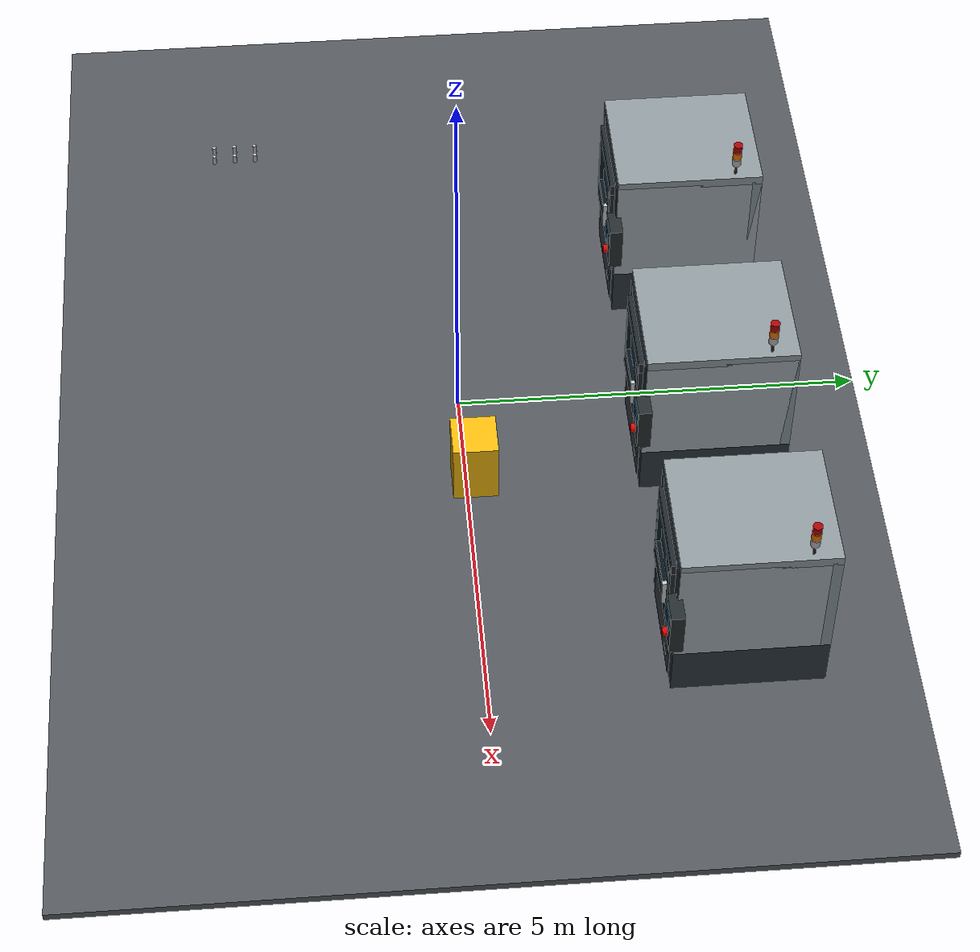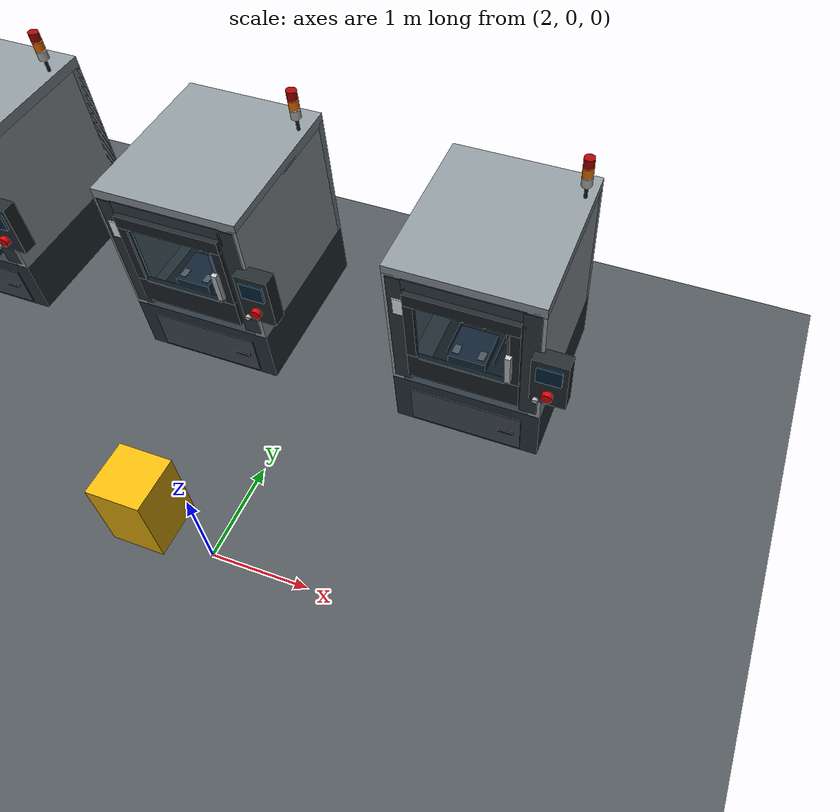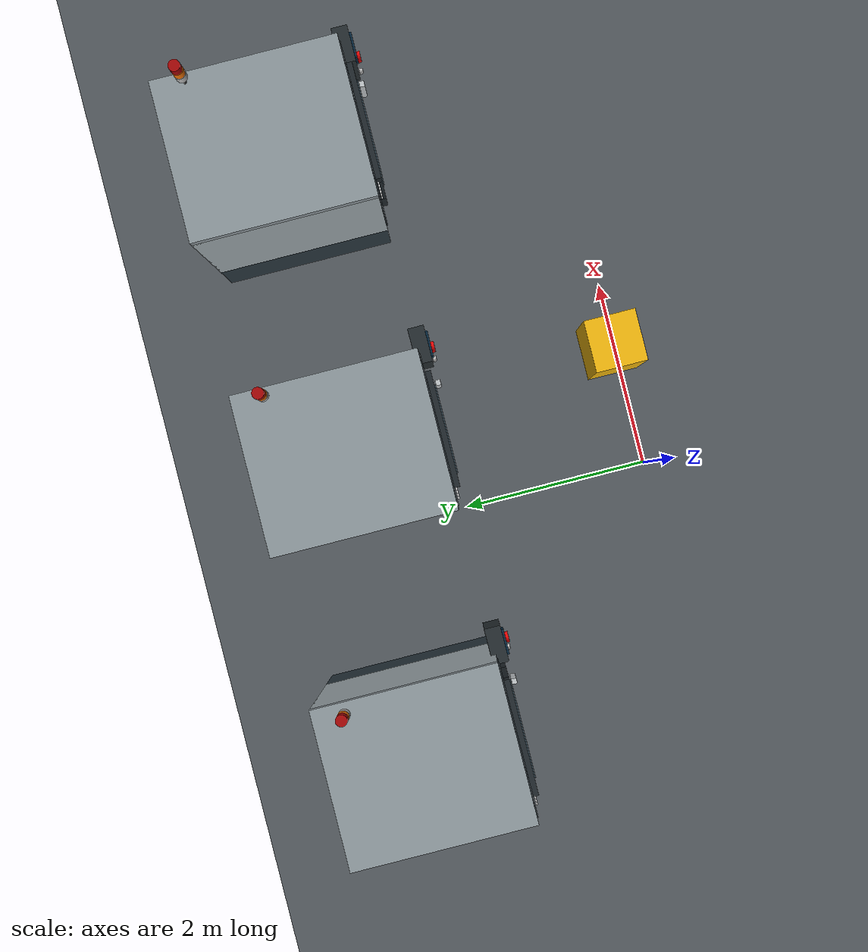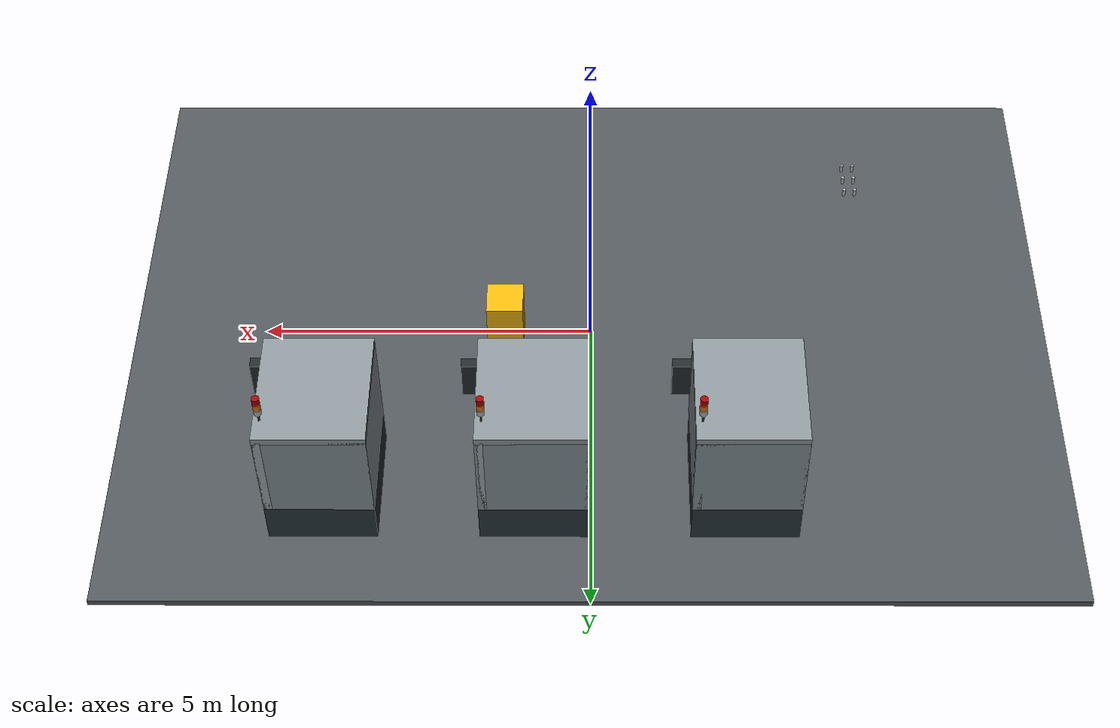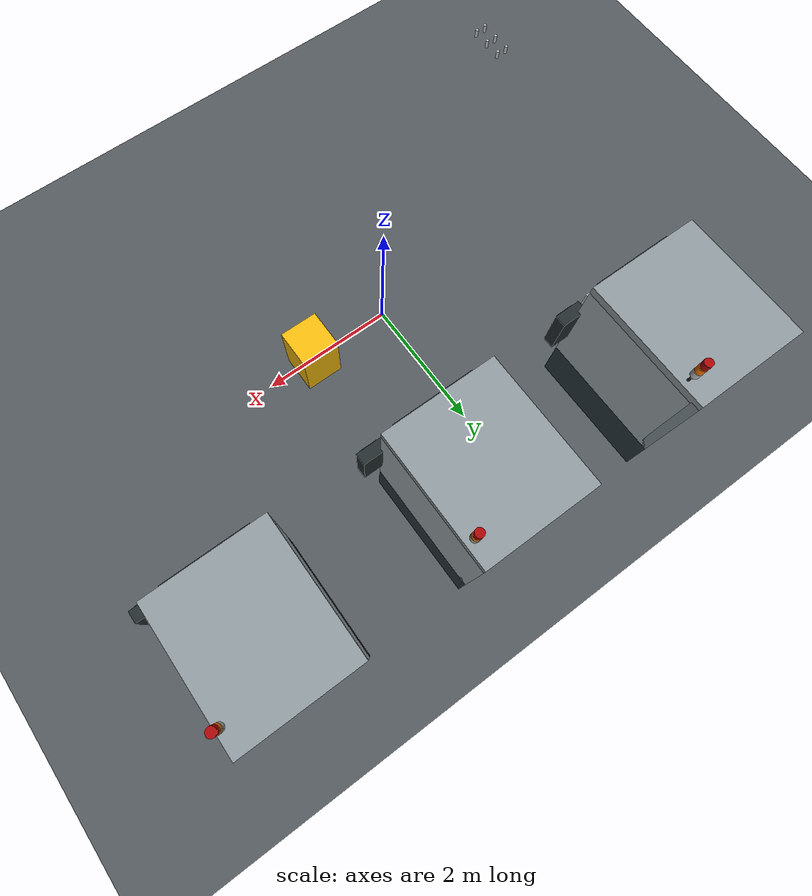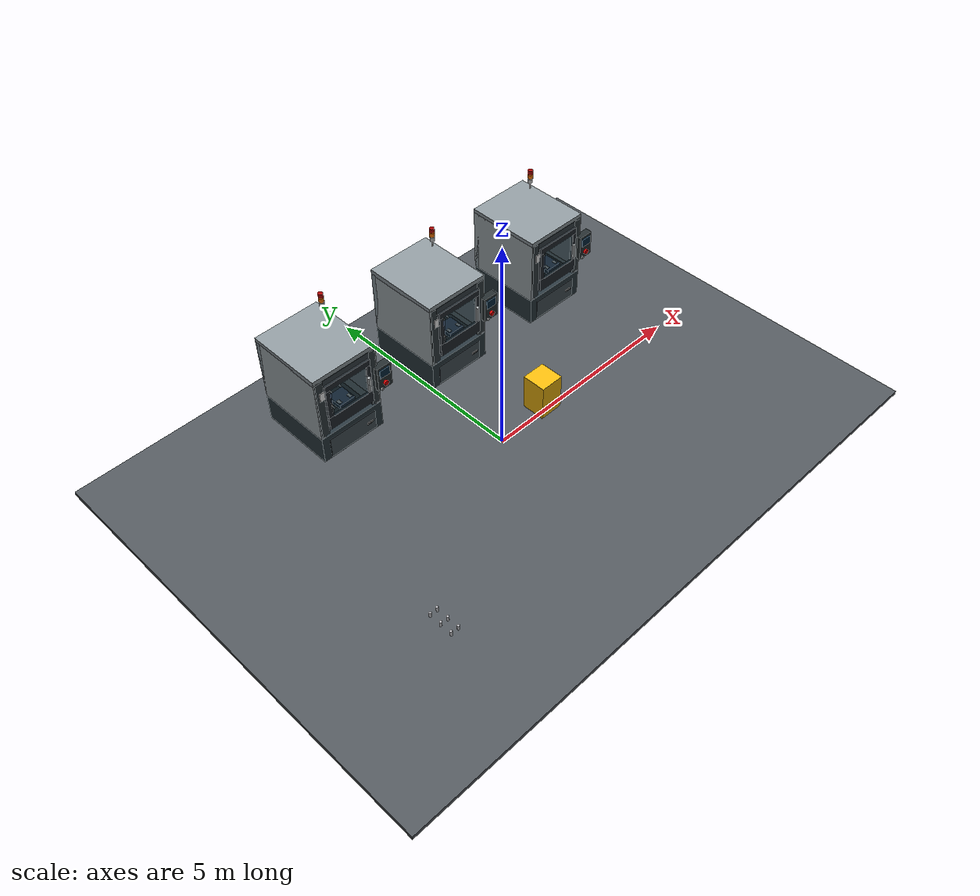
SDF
<sdf version="1.9">
 <world name="multi_machine_factory">
  <physics name="physics" type="ignored">
   <max_step_size>0.002</max_step_size>
   <real_time_factor>1.5</real_time_factor>
  </physics>
  <plugin filename="gz-sim-physics-system" name="gz::sim::systems::Physics"/>
  <plugin filename="gz-sim-contact-system" name="gz::sim::systems::Contact"/>
  <plugin filename="gz-sim-imu-system" name="gz::sim::systems::Imu"/>
  <plugin filename="gz-sim-user-commands-system" name="gz::sim::systems::UserCommands"/>
  <plugin filename="gz-sim-scene-broadcaster-system" name="gz::sim::systems::SceneBroadcaster"/>
  <plugin filename="gz-sim-sensors-system" name="gz::sim::systems::Sensors">
   <render_engine>ogre2</render_engine>
  </plugin>
  <scene>
   <ambient>0.55 0.55 0.55 1</ambient>
   <background>0.12 0.14 0.18 1</background>
   <shadows>true</shadows>
  </scene>
  <light name="sun" type="directional">
   <pose>0 0 10 0 0 0</pose>
   <diffuse>0.9 0.9 0.9 1</diffuse>
   <specular>0.2 0.2 0.2 1</specular>
   <direction>-0.4 0.2 -1</direction>
  </light>
  <model name="floor">
   <static>true</static>
   <link name="link">
    <collision name="collision"><geometry><box><size>14 10 0.1</size></box></geometry></collision>
    <visual name="visual">
     <geometry><box><size>14 10 0.1</size></box></geometry>
     <material><ambient>0.28 0.30 0.32 1</ambient><diffuse>0.32 0.34 0.36 1</diffuse></material>
    </visual>
   </link>
  </model>
  <include><uri>model://cnc_machine</uri><name>machine_1</name><pose>3.8 3.0 0 0 0 1.5708</pose></include>
  <include><uri>model://cnc_machine</uri><name>machine_2</name><pose>0.8 3.0 0 0 0 1.5708</pose></include>
  <include><uri>model://cnc_machine</uri><name>machine_3</name><pose>-2.2 3.0 0 0 0 1.5708</pose></include>
  <model name="demo_overview_camera">
   <static>true</static>
   <pose>0 -8.0 7.0 0 0.67 1.5708</pose>
   <link name="camera_link">
    <sensor name="overview" type="camera">
     <always_on>false</always_on>
     <update_rate>20</update_rate>
     <topic>/demo/overview/image</topic>
     <camera>
      <horizontal_fov>1.30</horizontal_fov>
      <image><width>1280</width><height>720</height><format>R8G8B8</format></image>
      <clip><near>0.10</near><far>30.0</far></clip>
     </camera>
    </sensor>
   </link>
  </model>
  <model name="temporary_obstacle">
   <static>true</static>
   <pose>1.3 0.1 0 0 0 0</pose>
   <link name="link">
    <collision name="collision">
     <pose>0 0 0.45 0 0 0</pose>
     <geometry><box><size>0.55 0.55 0.9</size></box></geometry>
    </collision>
    <visual name="visual">
     <pose>0 0 0.45 0 0 0</pose>
     <geometry><box><size>0.55 0.55 0.9</size></box></geometry>
     <material><diffuse>0.95 0.72 0.05 1</diffuse></material>
    </visual>
   </link>
  </model>
  <include><uri>model://workpiece</uri><name>raw_part_1</name><pose>-4.05 -2.97 0.614 0 0 0</pose></include>
  <include><uri>model://workpiece</uri><name>raw_part_2</name><pose>-4.05 -2.70 0.614 0 0 0</pose></include>
  <include><uri>model://workpiece</uri><name>raw_part_3</name><pose>-4.05 -2.43 0.614 0 0 0</pose></include>
  <include><uri>model://workpiece</uri><name>raw_part_4</name><pose>-4.22 -2.97 0.614 0 0 0</pose></include>
  <include><uri>model://workpiece</uri><name>raw_part_5</name><pose>-4.22 -2.70 0.614 0 0 0</pose></include>
  <include><uri>model://workpiece</uri><name>raw_part_6</name><pose>-4.22 -2.43 0.614 0 0 0</pose></include>
  <include><uri>model://fixture_clamp_constraints</uri></include>
 </world>
</sdf>

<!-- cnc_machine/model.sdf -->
<sdf version="1.9">
  <model name="cnc_machine">
    <static>false</static>
    <self_collide>false</self_collide>

    <!-- The enclosure is dynamic only so its door can move. This joint keeps
         the cabinet rigidly attached to the factory floor. -->
    <joint name="cabinet_world_joint" type="fixed">
      <parent>world</parent>
      <child>cabinet</child>
    </joint>

    <link name="cabinet">
      <inertial>
        <pose>0 0 1.05 0 0 0</pose>
        <mass>850</mass>
        <inertia>
          <ixx>240</ixx><iyy>280</iyy><izz>310</izz>
        </inertia>
      </inertial>

      <!-- Base cabinet and machine feet. -->
      <collision name="base_collision">
        <pose>0 0 0.35 0 0 0</pose>
        <geometry><box><size>1.80 1.55 0.70</size></box></geometry>
      </collision>
      <visual name="base_visual">
        <pose>0 0 0.35 0 0 0</pose>
        <geometry><box><size>1.80 1.55 0.70</size></box></geometry>
        <material><ambient>0.12 0.16 0.19 1</ambient><diffuse>0.16 0.21 0.24 1</diffuse><specular>0.35 0.35 0.35 1</specular></material>
      </visual>
      <visual name="lower_access_panel">
        <pose>-0.906 0 0.33 0 0 0</pose>
        <geometry><box><size>0.015 1.18 0.48</size></box></geometry>
        <material><diffuse>0.26 0.31 0.34 1</diffuse></material>
      </visual>
      <visual name="panel_handle">
        <pose>-0.92 -0.44 0.34 0 0 0</pose>
        <geometry><box><size>0.035 0.16 0.035</size></box></geometry>
        <material><diffuse>0.04 0.04 0.04 1</diffuse></material>
      </visual>

      <!-- Rear and side enclosure leave a genuine front opening. -->
      <collision name="rear_collision">
        <pose>0.84 0 1.45 0 0 0</pose>
        <geometry><box><size>0.12 1.55 1.50</size></box></geometry>
      </collision>
      <visual name="rear_visual">
        <pose>0.84 0 1.45 0 0 0</pose>
        <geometry><box><size>0.12 1.55 1.50</size></box></geometry>
        <material><diffuse>0.52 0.57 0.60 1</diffuse></material>
      </visual>
      <collision name="left_wall_collision">
        <pose>0 0.715 1.45 0 0 0</pose>
        <geometry><box><size>1.80 0.12 1.50</size></box></geometry>
      </collision>
      <visual name="left_wall_visual">
        <pose>0 0.715 1.45 0 0 0</pose>
        <geometry><box><size>1.80 0.12 1.50</size></box></geometry>
        <material><diffuse>0.62 0.66 0.68 1</diffuse></material>
      </visual>
      <collision name="right_wall_collision">
        <pose>0 -0.715 1.45 0 0 0</pose>
        <geometry><box><size>1.80 0.12 1.50</size></box></geometry>
      </collision>
      <visual name="right_wall_visual">
        <pose>0 -0.715 1.45 0 0 0</pose>
        <geometry><box><size>1.80 0.12 1.50</size></box></geometry>
        <material><diffuse>0.62 0.66 0.68 1</diffuse></material>
      </visual>
      <collision name="roof_collision">
        <pose>0 0 2.23 0 0 0</pose>
        <geometry><box><size>1.80 1.55 0.12</size></box></geometry>
      </collision>
      <visual name="roof_visual">
        <pose>0 0 2.23 0 0 0</pose>
        <geometry><box><size>1.80 1.55 0.12</size></box></geometry>
        <material><diffuse>0.55 0.59 0.61 1</diffuse></material>
      </visual>

      <!-- Front posts and lintel form the safety-door aperture. -->
      <collision name="front_left_post_collision">
        <pose>-0.86 0.65 1.47 0 0 0</pose>
        <geometry><box><size>0.10 0.18 1.42</size></box></geometry>
      </collision>
      <visual name="front_left_post_visual">
        <pose>-0.86 0.65 1.47 0 0 0</pose>
        <geometry><box><size>0.10 0.18 1.42</size></box></geometry>
        <material><diffuse>0.18 0.22 0.24 1</diffuse></material>
      </visual>
      <collision name="front_right_post_collision">
        <pose>-0.86 -0.65 1.47 0 0 0</pose>
        <geometry><box><size>0.10 0.18 1.42</size></box></geometry>
      </collision>
      <visual name="front_right_post_visual">
        <pose>-0.86 -0.65 1.47 0 0 0</pose>
        <geometry><box><size>0.10 0.18 1.42</size></box></geometry>
        <material><diffuse>0.18 0.22 0.24 1</diffuse></material>
      </visual>
      <collision name="front_lintel_collision">
        <pose>-0.86 0 2.08 0 0 0</pose>
        <geometry><box><size>0.10 1.18 0.22</size></box></geometry>
      </collision>
      <visual name="front_lintel_visual">
        <pose>-0.86 0 2.08 0 0 0</pose>
        <geometry><box><size>0.10 1.18 0.22</size></box></geometry>
        <material><diffuse>0.20 0.24 0.26 1</diffuse></material>
      </visual>

      <!-- Sloped chip pan, T-slot work table and two-jaw fixture. -->
      <collision name="chip_pan_collision">
        <pose>-0.05 0 0.87 0 0 0</pose>
        <geometry><box><size>1.45 1.24 0.10</size></box></geometry>
      </collision>
      <visual name="chip_pan_visual">
        <pose>-0.05 0 0.87 0 0 0</pose>
        <geometry><box><size>1.45 1.24 0.10</size></box></geometry>
        <material><diffuse>0.25 0.28 0.29 1</diffuse><specular>0.8 0.8 0.8 1</specular></material>
      </visual>
      <!-- The loading vise sits near the door on an extended table, within
           the UR5e workspace from a collision-free parking pose. -->
      <collision name="work_table_collision">
        <pose>-0.40 0 1.01 0 0 0</pose>
        <geometry><box><size>0.90 0.72 0.16</size></box></geometry>
      </collision>
      <visual name="work_table_visual">
        <pose>-0.40 0 1.01 0 0 0</pose>
        <geometry><box><size>0.90 0.72 0.16</size></box></geometry>
        <material><diffuse>0.12 0.14 0.15 1</diffuse><specular>0.9 0.9 0.9 1</specular></material>
      </visual>
      <visual name="table_slot_1"><pose>-0.40 -0.24 1.10 0 0 0</pose><geometry><box><size>0.66 0.025 0.012</size></box></geometry><material><diffuse>0.02 0.02 0.02 1</diffuse></material></visual>
      <visual name="table_slot_2"><pose>-0.40 0 1.10 0 0 0</pose><geometry><box><size>0.66 0.025 0.012</size></box></geometry><material><diffuse>0.02 0.02 0.02 1</diffuse></material></visual>
      <visual name="table_slot_3"><pose>-0.40 0.24 1.10 0 0 0</pose><geometry><box><size>0.66 0.025 0.012</size></box></geometry><material><diffuse>0.02 0.02 0.02 1</diffuse></material></visual>
      <!-- The zero-point pallet extends to the work-table front edge so the
           full 50 mm stock footprint remains supported at the loading datum. -->
      <collision name="fixture_base_collision"><pose>-0.65 0 1.16 0 0 0</pose><geometry><box><size>0.40 0.38 0.12</size></box></geometry></collision>
      <visual name="fixture_base_visual"><pose>-0.65 0 1.16 0 0 0</pose><geometry><box><size>0.40 0.38 0.12</size></box></geometry><material><diffuse>0.16 0.22 0.30 1</diffuse></material></visual>
      <!-- Flush locator marks represent a zero-point pallet. The physical
           fixture base supports stock without protruding into the wrist corridor. -->
      <visual name="fixture_jaw_left_visual"><pose>-0.75 0.13 1.2225 0 0 0</pose><geometry><box><size>0.11 0.07 0.005</size></box></geometry><material><diffuse>0.52 0.55 0.56 1</diffuse></material></visual>
      <visual name="fixture_jaw_right_visual"><pose>-0.75 -0.13 1.2225 0 0 0</pose><geometry><box><size>0.11 0.07 0.005</size></box></geometry><material><diffuse>0.52 0.55 0.56 1</diffuse></material></visual>

      <!-- Spindle head is visually detailed and physically blocks invalid paths. -->
      <collision name="spindle_head_collision"><pose>0.56 0 1.55 0 0 0</pose><geometry><box><size>0.46 0.52 0.58</size></box></geometry></collision>
      <visual name="spindle_head_visual"><pose>0.56 0 1.55 0 0 0</pose><geometry><box><size>0.46 0.52 0.58</size></box></geometry><material><diffuse>0.43 0.47 0.48 1</diffuse></material></visual>
      <collision name="spindle_nose_collision"><pose>0.25 0 1.44 0 1.5708 0</pose><geometry><cylinder><radius>0.105</radius><length>0.22</length></cylinder></geometry></collision>
      <visual name="spindle_nose_visual"><pose>0.25 0 1.44 0 1.5708 0</pose><geometry><cylinder><radius>0.105</radius><length>0.22</length></cylinder></geometry><material><diffuse>0.16 0.17 0.18 1</diffuse><specular>1 1 1 1</specular></material></visual>
      <visual name="tool_holder"><pose>0.09 0 1.44 0 1.5708 0</pose><geometry><cylinder><radius>0.050</radius><length>0.13</length></cylinder></geometry><material><diffuse>0.08 0.09 0.10 1</diffuse></material></visual>
      <visual name="cutting_tool"><pose>-0.015 0 1.44 0 1.5708 0</pose><geometry><cylinder><radius>0.014</radius><length>0.10</length></cylinder></geometry><material><diffuse>0.55 0.58 0.60 1</diffuse></material></visual>

      <!-- Operator panel, E-stop, status display and stack light. -->
      <collision name="hmi_collision"><pose>-0.93 -0.86 1.42 0 0 0</pose><geometry><box><size>0.16 0.36 0.60</size></box></geometry></collision>
      <visual name="hmi_body"><pose>-0.93 -0.86 1.42 0 0 0</pose><geometry><box><size>0.16 0.36 0.60</size></box></geometry><material><diffuse>0.14 0.17 0.18 1</diffuse></material></visual>
      <visual name="hmi_screen"><pose>-1.02 -0.86 1.55 0 0 0</pose><geometry><box><size>0.025 0.25 0.20</size></box></geometry><material><emissive>0.02 0.30 0.52 1</emissive><diffuse>0.02 0.15 0.24 1</diffuse></material></visual>
      <visual name="emergency_stop"><pose>-1.04 -0.86 1.27 0 1.5708 0</pose><geometry><cylinder><radius>0.055</radius><length>0.055</length></cylinder></geometry><material><diffuse>0.85 0.02 0.02 1</diffuse></material></visual>
      <visual name="cycle_start"><pose>-1.04 -0.75 1.17 0 1.5708 0</pose><geometry><cylinder><radius>0.027</radius><length>0.035</length></cylinder></geometry><material><emissive>0.02 0.65 0.08 1</emissive></material></visual>
      <visual name="stack_pole"><pose>0.57 -0.68 2.46 0 0 0</pose><geometry><cylinder><radius>0.018</radius><length>0.42</length></cylinder></geometry><material><diffuse>0.12 0.12 0.12 1</diffuse></material></visual>
      <visual name="stack_red"><pose>0.57 -0.68 2.71 0 0 0</pose><geometry><cylinder><radius>0.055</radius><length>0.10</length></cylinder></geometry><material><diffuse>0.65 0.02 0.02 1</diffuse></material></visual>
      <visual name="stack_amber"><pose>0.57 -0.68 2.60 0 0 0</pose><geometry><cylinder><radius>0.055</radius><length>0.10</length></cylinder></geometry><material><diffuse>0.95 0.45 0.02 1</diffuse></material></visual>
      <visual name="stack_green"><pose>0.57 -0.68 2.49 0 0 0</pose><geometry><cylinder><radius>0.055</radius><length>0.10</length></cylinder></geometry><material><emissive>0.02 0.42 0.05 1</emissive></material></visual>

      <!-- AprilTag mounting plate; the detector texture is a separate asset step. -->
      <visual name="tag_plate"><pose>-0.93 0.58 1.83 0 1.5708 0</pose><geometry><box><size>0.20 0.20 0.012</size></box></geometry><material><diffuse>0.96 0.96 0.96 1</diffuse></material></visual>

      <!-- These low-rate contacts make model-to-planning-scene mismatches
           observable in regression logs. They do not affect collision forces. -->
      <sensor name="base_contact" type="contact">
        <always_on>true</always_on><update_rate>20</update_rate>
        <contact><collision>base_collision</collision>
          <topic>/factory/cnc/contacts</topic></contact>
      </sensor>
      <sensor name="chip_pan_contact" type="contact">
        <always_on>true</always_on><update_rate>20</update_rate>
        <contact><collision>chip_pan_collision</collision>
          <topic>/factory/cnc/contacts</topic></contact>
      </sensor>
      <sensor name="work_table_contact" type="contact">
        <always_on>true</always_on><update_rate>20</update_rate>
        <contact><collision>work_table_collision</collision>
          <topic>/factory/cnc/contacts</topic></contact>
      </sensor>
      <sensor name="fixture_base_contact" type="contact">
        <always_on>true</always_on><update_rate>20</update_rate>
        <contact><collision>fixture_base_collision</collision>
          <topic>/factory/cnc/contacts</topic></contact>
      </sensor>
      <sensor name="front_left_post_contact" type="contact">
        <always_on>true</always_on><update_rate>20</update_rate>
        <contact><collision>front_left_post_collision</collision>
          <topic>/factory/cnc/contacts</topic></contact>
      </sensor>
      <sensor name="front_right_post_contact" type="contact">
        <always_on>true</always_on><update_rate>20</update_rate>
        <contact><collision>front_right_post_collision</collision>
          <topic>/factory/cnc/contacts</topic></contact>
      </sensor>
      <sensor name="front_lintel_contact" type="contact">
        <always_on>true</always_on><update_rate>20</update_rate>
        <contact><collision>front_lintel_collision</collision>
          <topic>/factory/cnc/contacts</topic></contact>
      </sensor>
    </link>

    <link name="sliding_door">
      <pose>-0.94 0 1.48 0 0 0</pose>
      <inertial><mass>38</mass><inertia><ixx>5.4</ixx><iyy>1.9</iyy><izz>6.8</izz></inertia></inertial>
      <collision name="door_collision"><geometry><box><size>0.055 1.13 1.16</size></box></geometry></collision>
      <!-- Four visual rails leave a genuine transparent window opening. The
           single full-size collision still represents the safety door. -->
      <visual name="door_frame_top"><pose>0 0 0.505 0 0 0</pose><geometry><box><size>0.055 1.13 0.15</size></box></geometry><material><diffuse>0.12 0.15 0.17 1</diffuse></material></visual>
      <visual name="door_frame_bottom"><pose>0 0 -0.425 0 0 0</pose><geometry><box><size>0.055 1.13 0.31</size></box></geometry><material><diffuse>0.12 0.15 0.17 1</diffuse></material></visual>
      <visual name="door_frame_left"><pose>0 0.515 0.08 0 0 0</pose><geometry><box><size>0.055 0.10 0.70</size></box></geometry><material><diffuse>0.12 0.15 0.17 1</diffuse></material></visual>
      <visual name="door_frame_right"><pose>0 -0.515 0.08 0 0 0</pose><geometry><box><size>0.055 0.10 0.70</size></box></geometry><material><diffuse>0.12 0.15 0.17 1</diffuse></material></visual>

      <visual name="window"><pose>-0.032 0 0.08 0 0 0</pose><geometry><box><size>0.018 0.86 0.70</size></box></geometry><material><ambient>0.04 0.13 0.18 0.45</ambient><diffuse>0.05 0.18 0.24 0.45</diffuse><specular>0.8 0.8 0.8 0.45</specular></material><transparency>0.55</transparency></visual>
      <visual name="door_handle"><pose>-0.07 -0.47 0 0 0 0</pose><geometry><box><size>0.05 0.055 0.34</size></box></geometry><material><diffuse>0.75 0.77 0.78 1</diffuse></material></visual>
      <sensor name="door_contact" type="contact">
        <always_on>true</always_on><update_rate>20</update_rate>
        <contact><collision>door_collision</collision>
          <topic>/factory/cnc/contacts</topic></contact>
      </sensor>
    </link>
    <joint name="sliding_door_joint" type="prismatic">
      <parent>cabinet</parent>
      <child>sliding_door</child>
      <axis>
        <xyz>0 1 0</xyz>
        <limit><lower>0</lower><upper>1.18</upper><effort>1200</effort><velocity>0.55</velocity></limit>
        <dynamics><damping>80</damping><friction>15</friction></dynamics>
      </axis>
    </joint>

    <plugin filename="gz-sim-joint-position-controller-system" name="gz::sim::systems::JointPositionController">
      <joint_name>sliding_door_joint</joint_name>
      <p_gain>1600</p_gain><i_gain>3</i_gain><d_gain>220</d_gain>
      <i_max>10</i_max><i_min>-10</i_min><cmd_max>1200</cmd_max><cmd_min>-1200</cmd_min>
      <initial_position>0</initial_position>
    </plugin>

    <!-- Equivalent to a real door-open limit switch. The ROS bridge exposes
         this measured joint position independently from the PLC command. -->
    <plugin filename="gz-sim-joint-state-publisher-system"
            name="gz::sim::systems::JointStatePublisher">
      <joint_name>sliding_door_joint</joint_name>
    </plugin>
  </model>
</sdf>

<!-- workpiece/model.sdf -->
<sdf version="1.9">
  <model name="workpiece">
    <link name="part">
      <inertial>
        <mass>0.6</mass>
        <inertia>
          <ixx>0.002</ixx>
          <iyy>0.002</iyy>
          <izz>0.001</izz>
        </inertia>
      </inertial>
      <collision name="collision">
        <geometry>
          <cylinder>
            <radius>0.025</radius>
            <length>0.12</length>
          </cylinder>
        </geometry>
        <surface>
          <friction>
            <!-- Match the 2.0 rubber-pad material used by the gripper so
                 contact behaviour does not depend on which body supplies the
                 friction coefficient for the pair. -->
            <ode>
              <mu>2.0</mu>
              <mu2>2.0</mu2>
            </ode>
            <bullet>
              <friction>2.0</friction>
              <friction2>2.0</friction2>
            </bullet>
          </friction>
          <contact>
            <ode>
              <kp>200000</kp>
              <kd>10</kd>
              <max_vel>0.05</max_vel>
              <min_depth>0.001</min_depth>
            </ode>
          </contact>
        </surface>
      </collision>
      <visual name="visual">
        <geometry>
          <cylinder>
            <radius>0.025</radius>
            <length>0.12</length>
          </cylinder>
        </geometry>
        <material>
          <diffuse>0.72 0.72 0.74 1</diffuse>
        </material>
      </visual>
      <!-- Simulation truth reports every collision involving this workpiece.
           Verification still requires both gripper sides; table contact alone
           can never satisfy the grasp condition. -->
      <sensor name="physical_contact" type="contact">
        <always_on>true</always_on>
        <update_rate>100</update_rate>
        <contact>
          <collision>collision</collision>
          <topic>/factory/workpieces/contacts</topic>
        </contact>
      </sensor>
    </link>
    <plugin filename="gz-sim-pose-publisher-system"
            name="gz::sim::systems::PosePublisher">
      <publish_model_pose>true</publish_model_pose>
      <publish_link_pose>true</publish_link_pose>
      <publish_sensor_pose>false</publish_sensor_pose>
      <publish_collision_pose>false</publish_collision_pose>
      <publish_visual_pose>false</publish_visual_pose>
      <use_pose_vector_msg>true</use_pose_vector_msg>
      <update_frequency>20</update_frequency>
    </plugin>
  </model>
</sdf>

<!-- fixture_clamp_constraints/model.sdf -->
<sdf version="1.9">
  <model name="fixture_clamp_constraints">
    <static>true</static>
    <self_collide>true</self_collide>
    <link name="world_anchor"/>

    <!-- A clamp attaches at the workpiece's current pose, so the same physical
         adapter works for any CNC station without teleporting the part. -->
    <plugin filename="gz-sim-detachable-joint-system"
            name="gz::sim::systems::DetachableJoint">
      <parent_link>world_anchor</parent_link>
      <child_model>raw_part_1</child_model>
      <child_link>part</child_link>
      <detach_topic>/factory/fixture/raw_part_1/detach</detach_topic>
      <attach_topic>/factory/fixture/raw_part_1/attach</attach_topic>
      <output_topic>/factory/fixture/raw_part_1/attached</output_topic>
    </plugin>
    <plugin filename="gz-sim-detachable-joint-system"
            name="gz::sim::systems::DetachableJoint">
      <parent_link>world_anchor</parent_link>
      <child_model>raw_part_2</child_model>
      <child_link>part</child_link>
      <detach_topic>/factory/fixture/raw_part_2/detach</detach_topic>
      <attach_topic>/factory/fixture/raw_part_2/attach</attach_topic>
      <output_topic>/factory/fixture/raw_part_2/attached</output_topic>
    </plugin>
    <plugin filename="gz-sim-detachable-joint-system"
            name="gz::sim::systems::DetachableJoint">
      <parent_link>world_anchor</parent_link>
      <child_model>raw_part_3</child_model>
      <child_link>part</child_link>
      <detach_topic>/factory/fixture/raw_part_3/detach</detach_topic>
      <attach_topic>/factory/fixture/raw_part_3/attach</attach_topic>
      <output_topic>/factory/fixture/raw_part_3/attached</output_topic>
    </plugin>
    <plugin filename="gz-sim-detachable-joint-system"
            name="gz::sim::systems::DetachableJoint">
      <parent_link>world_anchor</parent_link>
      <child_model>raw_part_4</child_model>
      <child_link>part</child_link>
      <detach_topic>/factory/fixture/raw_part_4/detach</detach_topic>
      <attach_topic>/factory/fixture/raw_part_4/attach</attach_topic>
      <output_topic>/factory/fixture/raw_part_4/attached</output_topic>
    </plugin>
    <plugin filename="gz-sim-detachable-joint-system"
            name="gz::sim::systems::DetachableJoint">
      <parent_link>world_anchor</parent_link>
      <child_model>raw_part_5</child_model>
      <child_link>part</child_link>
      <detach_topic>/factory/fixture/raw_part_5/detach</detach_topic>
      <attach_topic>/factory/fixture/raw_part_5/attach</attach_topic>
      <output_topic>/factory/fixture/raw_part_5/attached</output_topic>
    </plugin>
    <plugin filename="gz-sim-detachable-joint-system"
            name="gz::sim::systems::DetachableJoint">
      <parent_link>world_anchor</parent_link>
      <child_model>raw_part_6</child_model>
      <child_link>part</child_link>
      <detach_topic>/factory/fixture/raw_part_6/detach</detach_topic>
      <attach_topic>/factory/fixture/raw_part_6/attach</attach_topic>
      <output_topic>/factory/fixture/raw_part_6/attached</output_topic>
    </plugin>
  </model>
</sdf>
